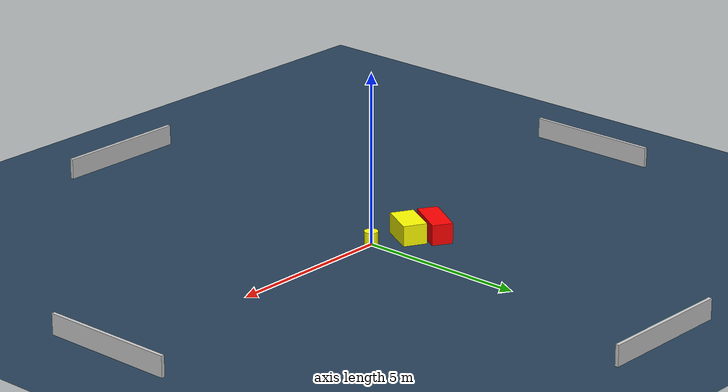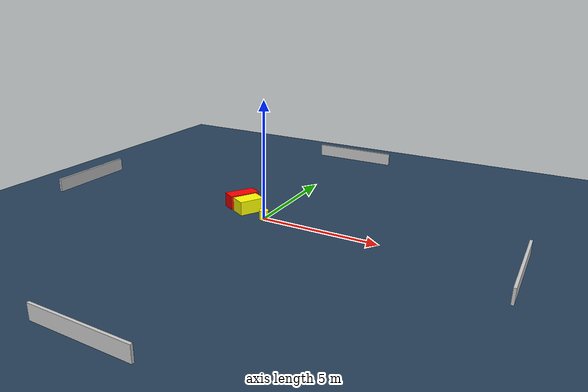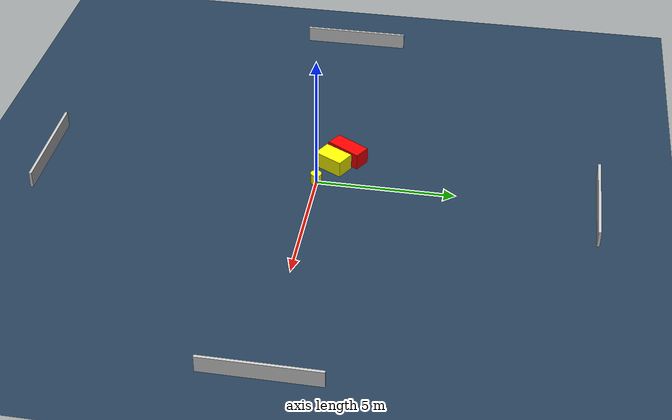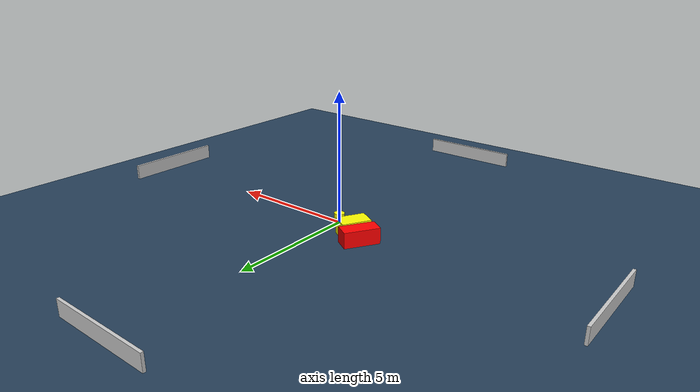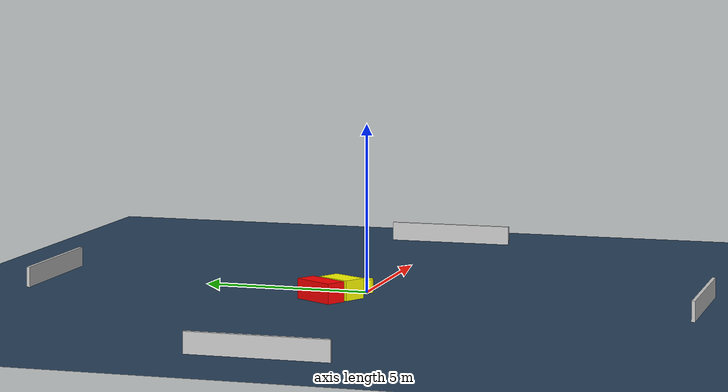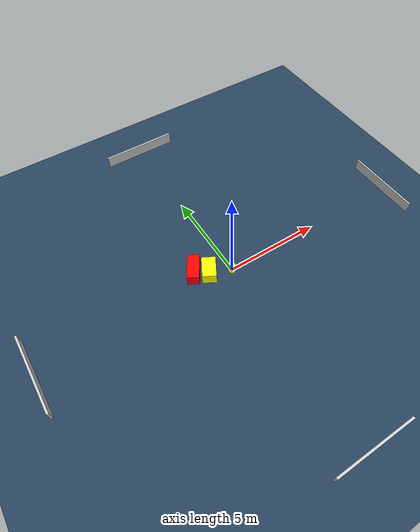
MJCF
<?xml version="1.0" ?>
<mujoco model="generated_environment">
  <option timestep="0.01" integrator="RK4" cone="elliptic"/>
  <default>
    <geom density="1"/>
  </default>
  <asset>
    <texture builtin="gradient" height="3072" name="skybox" rgb1="0.3 0.5 0.7" rgb2="0 0 0" type="skybox" width="512"/>
    <texture builtin="checker" height="300" name="groundplane" rgb1="0.2 0.3 0.4" rgb2="0.1 0.2 0.3" type="2d" width="300"/>
    <material name="groundplane" reflectance="0.2" texrepeat="5 5" texture="groundplane"/>
  </asset>
  <worldbody>
    <light dir="0 0 -1" directional="true" pos="0 0 1.5"/>
    <geom condim="3" friction="0.5 0.005 0.001" material="groundplane" name="floor" pos="0 0 0" size="0 0 0.05" type="plane"/>
    <body name="walls">
      <geom name="wall_1" condim="4" pos="-10.0 0.0 0.3" rgba="0.800000011920929 0.800000011920929 0.800000011920929 1.0" size="0.05 2.0 0.3" type="box"/>
      <geom name="wall_2" condim="4" pos="10.0 0.0 0.3" rgba="0.800000011920929 0.800000011920929 0.800000011920929 1.0" size="0.05 2.0 0.3" type="box"/>
      <geom name="wall_3" condim="4" pos="0.0 -10.0 0.3" rgba="0.800000011920929 0.800000011920929 0.800000011920929 1.0" size="2.0 0.05 0.3" type="box"/>
      <geom name="wall_4" condim="4" pos="0.0 10.0 0.3" rgba="0.800000011920929 0.800000011920929 0.800000011920929 1.0" size="2.0 0.05 0.3" type="box"/>
    </body>
    <body name="robot">
      <joint name="joint_x" type="slide" pos="0 0 0" axis="1 0 0"/>
      <joint name="joint_y" type="slide" pos="0 0 0" axis="0 1 0"/>
      <geom name="robot" type="cylinder" pos="0.0 0.0 0.2" size="0.2 0.2 0.0" mass="5.0" friction="1.0 0.005 0.0001" condim="4" rgba="1.0 1.0 0.0 1.0"/>
    </body>
    <body name="obstacle_1_movable">
      <geom name="obstacle_1_movable" condim="4" pos="-1.035899992714009 0.4618133845368722 0.3" euler="0 0 61.10535126849192" friction="0.0 0.005 0.001" rgba="1.0 1.0 0.0 1.0" size="0.5575305839897456 0.3492410719616472 0.3" type="box" mass="0.1"/>
      <joint type="free"/>
    </body>
    <body name="obstacle_2_static">
      <geom name="obstacle_2_static" condim="4" pos="-1.6506292644790137 0.9089221729123662 0.3" euler="0 0 328.5356584644435" friction="0.0 0.005 0.001" rgba="1.0 0.0 0.0 1.0" size="0.30438582490264 0.6753128825916197 0.3" type="box"/>
    </body>
  </worldbody>
  <actuator>
    <motor name="actuator_x" joint="joint_x" gear="1" ctrlrange="-1 1"/>
    <motor name="actuator_y" joint="joint_y" gear="1" ctrlrange="-1 1"/>
  </actuator>
</mujoco>
